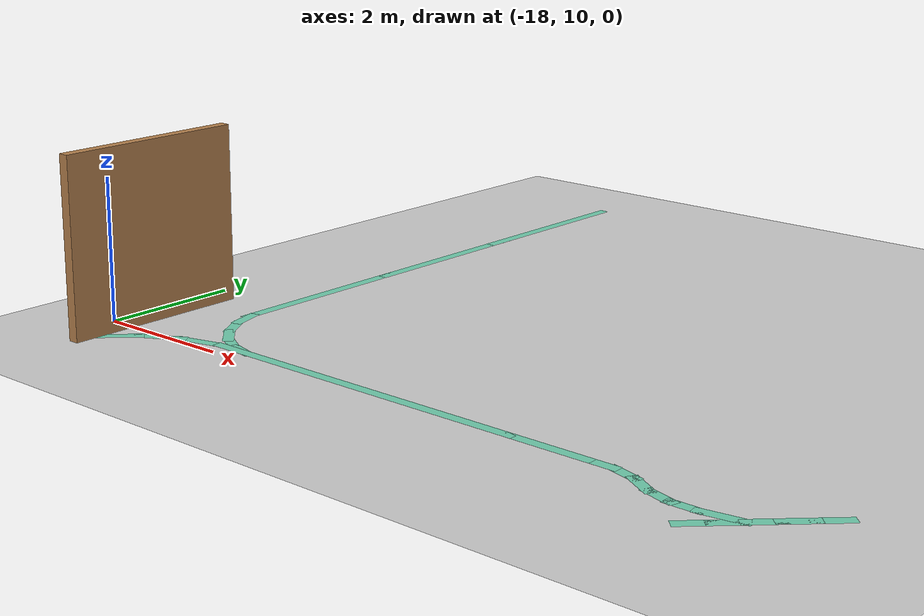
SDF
<sdf version="1.6">
 <world name="default">
  <model name="ground_plane">
   <static>1</static>
   <link name="link">
    <collision name="collision">
     <geometry><plane><normal>0 0 1</normal><size>100 100</size></plane></geometry>
     <surface><friction><ode><mu>100</mu><mu2>50</mu2></ode></friction></surface>
    </collision>
    <visual name="visual">
     <cast_shadows>0</cast_shadows>
     <geometry><plane><normal>0 0 1</normal><size>100 100</size></plane></geometry>
     <material>
      <script><uri>file://media/materials/scripts/gazebo.material</uri><name>Gazebo/Grey</name></script>
     </material>
    </visual>
   </link>
  </model>
  <model name="pomdp_path">
   <link name="Wall_100_clone_clone_clone_clone">
    <pose>7.57944 -0.900466 0 0 -0 -0.52358</pose>
    <visual name="Wall_100_Visual">
     <pose>0 0 0.0001 0 -0 0</pose>
     <geometry><box><size>0.5 0.15 0</size></box></geometry>
     <material>
      <script><uri>file://media/materials/scripts/gazebo.material</uri><name>Gazebo/Grey</name></script>
      <ambient>0.435294 0.796078 0.67451 1</ambient>
      <shader type="pixel"/>
     </material>
     <meta><layer>0</layer></meta>
    </visual>
    <collision name="Wall_100_Collision">
     <pose>0 0 0.0001 0 -0 0</pose>
     <geometry><box><size>0.5 0.15 0</size></box></geometry>
     <surface>
      <friction>
       <ode><mu>1</mu><mu2>1</mu2><fdir1>0 0 0</fdir1><slip1>0</slip1><slip2>0</slip2></ode>
       <torsional>
        <coefficient>1</coefficient>
        <patch_radius>0</patch_radius>
        <surface_radius>0</surface_radius>
        <use_patch_radius>1</use_patch_radius>
        <ode><slip>0</slip></ode>
       </torsional>
      </friction>
      <bounce><restitution_coefficient>0</restitution_coefficient><threshold>1e+06</threshold></bounce>
      <contact>
       <collide_without_contact>0</collide_without_contact>
       <collide_without_contact_bitmask>1</collide_without_contact_bitmask>
       <collide_bitmask>1</collide_bitmask>
       <ode>
        <soft_cfm>0</soft_cfm>
        <soft_erp>0.2</soft_erp>
        <kp>1e+13</kp>
        <kd>1</kd>
        <max_vel>0.01</max_vel>
        <min_depth>0</min_depth>
       </ode>
       <bullet>
        <split_impulse>1</split_impulse>
        <split_impulse_penetration_threshold>-0.01</split_impulse_penetration_threshold>
        <soft_cfm>0</soft_cfm>
        <soft_erp>0.2</soft_erp>
        <kp>1e+13</kp>
        <kd>1</kd>
       </bullet>
      </contact>
     </surface>
    </collision>
   </link>
   <link name="Wall_102_clone_clone">
    <pose>7.3019 -0.80535 0 0 -0 -0.26179</pose>
    <visual name="Wall_102_Visual">
     <pose>0 0 0.0001 0 -0 0</pose>
     <geometry><box><size>0.5 0.15 0</size></box></geometry>
     <material>
      <script><uri>file://media/materials/scripts/gazebo.material</uri><name>Gazebo/Grey</name></script>
      <ambient>0.435294 0.796078 0.67451 1</ambient>
      <shader type="pixel"/>
     </material>
     <meta><layer>0</layer></meta>
    </visual>
    <collision name="Wall_102_Collision">
     <pose>0 0 0.0001 0 -0 0</pose>
     <geometry><box><size>0.5 0.15 0</size></box></geometry>
     <surface>
      <friction>
       <ode><mu>1</mu><mu2>1</mu2><fdir1>0 0 0</fdir1><slip1>0</slip1><slip2>0</slip2></ode>
       <torsional>
        <coefficient>1</coefficient>
        <patch_radius>0</patch_radius>
        <surface_radius>0</surface_radius>
        <use_patch_radius>1</use_patch_radius>
        <ode><slip>0</slip></ode>
       </torsional>
      </friction>
      <bounce><restitution_coefficient>0</restitution_coefficient><threshold>1e+06</threshold></bounce>
      <contact>
       <collide_without_contact>0</collide_without_contact>
       <collide_without_contact_bitmask>1</collide_without_contact_bitmask>
       <collide_bitmask>1</collide_bitmask>
       <ode>
        <soft_cfm>0</soft_cfm>
        <soft_erp>0.2</soft_erp>
        <kp>1e+13</kp>
        <kd>1</kd>
        <max_vel>0.01</max_vel>
        <min_depth>0</min_depth>
       </ode>
       <bullet>
        <split_impulse>1</split_impulse>
        <split_impulse_penetration_threshold>-0.01</split_impulse_penetration_threshold>
        <soft_cfm>0</soft_cfm>
        <soft_erp>0.2</soft_erp>
        <kp>1e+13</kp>
        <kd>1</kd>
       </bullet>
      </contact>
     </surface>
    </collision>
   </link>
   <link name="Wall_138_clone_clone_clone_clone_clone">
    <pose>7.89054 -1.12595 0 0 -0 2.35622</pose>
    <visual name="Wall_138_Visual">
     <pose>0 0 0.0001 0 -0 0</pose>
     <geometry><box><size>0.5 0.15 0</size></box></geometry>
     <material>
      <script><uri>file://media/materials/scripts/gazebo.material</uri><name>Gazebo/Grey</name></script>
      <ambient>0.435294 0.796078 0.67451 1</ambient>
      <shader type="pixel"/>
     </material>
     <meta><layer>0</layer></meta>
    </visual>
    <collision name="Wall_138_Collision">
     <pose>0 0 0.0001 0 -0 0</pose>
     <geometry><box><size>0.5 0.15 0</size></box></geometry>
     <surface>
      <friction>
       <ode><mu>1</mu><mu2>1</mu2><fdir1>0 0 0</fdir1><slip1>0</slip1><slip2>0</slip2></ode>
       <torsional>
        <coefficient>1</coefficient>
        <patch_radius>0</patch_radius>
        <surface_radius>0</surface_radius>
        <use_patch_radius>1</use_patch_radius>
        <ode><slip>0</slip></ode>
       </torsional>
      </friction>
      <bounce><restitution_coefficient>0</restitution_coefficient><threshold>1e+06</threshold></bounce>
      <contact>
       <collide_without_contact>0</collide_without_contact>
       <collide_without_contact_bitmask>1</collide_without_contact_bitmask>
       <collide_bitmask>1</collide_bitmask>
       <ode>
        <soft_cfm>0</soft_cfm>
        <soft_erp>0.2</soft_erp>
        <kp>1e+13</kp>
        <kd>1</kd>
        <max_vel>0.01</max_vel>
        <min_depth>0</min_depth>
       </ode>
       <bullet>
        <split_impulse>1</split_impulse>
        <split_impulse_penetration_threshold>-0.01</split_impulse_penetration_threshold>
        <soft_cfm>0</soft_cfm>
        <soft_erp>0.2</soft_erp>
        <kp>1e+13</kp>
        <kd>1</kd>
       </bullet>
      </contact>
     </surface>
    </collision>
   </link>
   <link name="Wall_169_clone_clone">
    <pose>8.12917 -1.43142 0 0 -0 -1.04719</pose>
    <visual name="Wall_169_Visual">
     <pose>0 0 0.0001 0 -0 0</pose>
     <geometry><box><size>0.5 0.15 0</size></box></geometry>
     <material>
      <script><uri>file://media/materials/scripts/gazebo.material</uri><name>Gazebo/Grey</name></script>
      <ambient>0.435294 0.796078 0.67451 1</ambient>
      <shader type="pixel"/>
     </material>
     <meta><layer>0</layer></meta>
    </visual>
    <collision name="Wall_169_Collision">
     <pose>0 0 0.0001 0 -0 0</pose>
     <geometry><box><size>0.5 0.15 0</size></box></geometry>
     <surface>
      <friction>
       <ode><mu>1</mu><mu2>1</mu2><fdir1>0 0 0</fdir1><slip1>0</slip1><slip2>0</slip2></ode>
       <torsional>
        <coefficient>1</coefficient>
        <patch_radius>0</patch_radius>
        <surface_radius>0</surface_radius>
        <use_patch_radius>1</use_patch_radius>
        <ode><slip>0</slip></ode>
       </torsional>
      </friction>
      <bounce><restitution_coefficient>0</restitution_coefficient><threshold>1e+06</threshold></bounce>
      <contact>
       <collide_without_contact>0</collide_without_contact>
       <collide_without_contact_bitmask>1</collide_without_contact_bitmask>
       <collide_bitmask>1</collide_bitmask>
       <ode>
        <soft_cfm>0</soft_cfm>
        <soft_erp>0.2</soft_erp>
        <kp>1e+13</kp>
        <kd>1</kd>
        <max_vel>0.01</max_vel>
        <min_depth>0</min_depth>
       </ode>
       <bullet>
        <split_impulse>1</split_impulse>
        <split_impulse_penetration_threshold>-0.01</split_impulse_penetration_threshold>
        <soft_cfm>0</soft_cfm>
        <soft_erp>0.2</soft_erp>
        <kp>1e+13</kp>
        <kd>1</kd>
       </bullet>
      </contact>
     </surface>
    </collision>
   </link>
   <link name="Wall_170_clone_clone_clone_clone_clone">
    <pose>8.27616 -1.77425 0 0 -0 1.83262</pose>
    <visual name="Wall_170_Visual">
     <pose>0 0 0.0001 0 -0 0</pose>
     <geometry><box><size>0.5 0.15 0</size></box></geometry>
     <material>
      <script><uri>file://media/materials/scripts/gazebo.material</uri><name>Gazebo/Grey</name></script>
      <ambient>0.435294 0.796078 0.67451 1</ambient>
      <shader type="pixel"/>
     </material>
     <meta><layer>0</layer></meta>
    </visual>
    <collision name="Wall_170_Collision">
     <pose>0 0 0.0001 0 -0 0</pose>
     <geometry><box><size>0.5 0.15 0</size></box></geometry>
     <surface>
      <friction>
       <ode><mu>1</mu><mu2>1</mu2><fdir1>0 0 0</fdir1><slip1>0</slip1><slip2>0</slip2></ode>
       <torsional>
        <coefficient>1</coefficient>
        <patch_radius>0</patch_radius>
        <surface_radius>0</surface_radius>
        <use_patch_radius>1</use_patch_radius>
        <ode><slip>0</slip></ode>
       </torsional>
      </friction>
      <bounce><restitution_coefficient>0</restitution_coefficient><threshold>1e+06</threshold></bounce>
      <contact>
       <collide_without_contact>0</collide_without_contact>
       <collide_without_contact_bitmask>1</collide_without_contact_bitmask>
       <collide_bitmask>1</collide_bitmask>
       <ode>
        <soft_cfm>0</soft_cfm>
        <soft_erp>0.2</soft_erp>
        <kp>1e+13</kp>
        <kd>1</kd>
        <max_vel>0.01</max_vel>
        <min_depth>0</min_depth>
       </ode>
       <bullet>
        <split_impulse>1</split_impulse>
        <split_impulse_penetration_threshold>-0.01</split_impulse_penetration_threshold>
        <soft_cfm>0</soft_cfm>
        <soft_erp>0.2</soft_erp>
        <kp>1e+13</kp>
        <kd>1</kd>
       </bullet>
      </contact>
     </surface>
    </collision>
   </link>
   <link name="Wall_200">
    <pose>-1.09302 -1.11686 0 0 -0 0.785398</pose>
    <visual name="Wall_200_Visual">
     <pose>0 0 0.0001 0 -0 0</pose>
     <geometry><box><size>0.5 0.15 0</size></box></geometry>
     <material>
      <script><uri>file://media/materials/scripts/gazebo.material</uri><name>Gazebo/Grey</name></script>
      <ambient>0.435294 0.796078 0.67451 1</ambient>
      <shader type="pixel"/>
     </material>
     <meta><layer>0</layer></meta>
    </visual>
    <collision name="Wall_200_Collision">
     <pose>0 0 0.0001 0 -0 0</pose>
     <geometry><box><size>0.5 0.15 0</size></box></geometry>
     <surface>
      <friction>
       <ode><mu>1</mu><mu2>1</mu2><fdir1>0 0 0</fdir1><slip1>0</slip1><slip2>0</slip2></ode>
       <torsional>
        <coefficient>1</coefficient>
        <patch_radius>0</patch_radius>
        <surface_radius>0</surface_radius>
        <use_patch_radius>1</use_patch_radius>
        <ode><slip>0</slip></ode>
       </torsional>
      </friction>
      <bounce><restitution_coefficient>0</restitution_coefficient><threshold>1e+06</threshold></bounce>
      <contact>
       <collide_without_contact>0</collide_without_contact>
       <collide_without_contact_bitmask>1</collide_without_contact_bitmask>
       <collide_bitmask>1</collide_bitmask>
       <ode>
        <soft_cfm>0</soft_cfm>
        <soft_erp>0.2</soft_erp>
        <kp>1e+13</kp>
        <kd>1</kd>
        <max_vel>0.01</max_vel>
        <min_depth>0</min_depth>
       </ode>
       <bullet>
        <split_impulse>1</split_impulse>
        <split_impulse_penetration_threshold>-0.01</split_impulse_penetration_threshold>
        <soft_cfm>0</soft_cfm>
        <soft_erp>0.2</soft_erp>
        <kp>1e+13</kp>
        <kd>1</kd>
       </bullet>
      </contact>
     </surface>
    </collision>
   </link>
   <link name="Wall_230">
    <pose>0.209547 -0.413565 0 0 -0 0</pose>
    <visual name="Wall_230_Visual">
     <pose>0 0 0.0001 0 -0 0</pose>
     <geometry><box><size>0.5 0.15 0</size></box></geometry>
     <material>
      <script><uri>file://media/materials/scripts/gazebo.material</uri><name>Gazebo/Grey</name></script>
      <ambient>0.435294 0.796078 0.67451 1</ambient>
      <shader type="pixel"/>
     </material>
     <meta><layer>0</layer></meta>
    </visual>
    <collision name="Wall_230_Collision">
     <pose>0 0 0.0001 0 -0 0</pose>
     <geometry><box><size>0.5 0.15 0</size></box></geometry>
     <surface>
      <friction>
       <ode><mu>1</mu><mu2>1</mu2><fdir1>0 0 0</fdir1><slip1>0</slip1><slip2>0</slip2></ode>
       <torsional>
        <coefficient>1</coefficient>
        <patch_radius>0</patch_radius>
        <surface_radius>0</surface_radius>
        <use_patch_radius>1</use_patch_radius>
        <ode><slip>0</slip></ode>
       </torsional>
      </friction>
      <bounce><restitution_coefficient>0</restitution_coefficient><threshold>1e+06</threshold></bounce>
      <contact>
       <collide_without_contact>0</collide_without_contact>
       <collide_without_contact_bitmask>1</collide_without_contact_bitmask>
       <collide_bitmask>1</collide_bitmask>
       <ode>
        <soft_cfm>0</soft_cfm>
        <soft_erp>0.2</soft_erp>
        <kp>1e+13</kp>
        <kd>1</kd>
        <max_vel>0.01</max_vel>
        <min_depth>0</min_depth>
       </ode>
       <bullet>
        <split_impulse>1</split_impulse>
        <split_impulse_penetration_threshold>-0.01</split_impulse_penetration_threshold>
        <soft_cfm>0</soft_cfm>
        <soft_erp>0.2</soft_erp>
        <kp>1e+13</kp>
        <kd>1</kd>
       </bullet>
      </contact>
     </surface>
    </collision>
   </link>
   <link name="Wall_231">
    <pose>0.553584 -0.458858 0 0 0 -0.261799</pose>
    <visual name="Wall_231_Visual">
     <pose>0 0 0.0001 0 -0 0</pose>
     <geometry><box><size>0.5 0.15 0</size></box></geometry>
     <material>
      <script><uri>file://media/materials/scripts/gazebo.material</uri><name>Gazebo/Grey</name></script>
      <ambient>0.435294 0.796078 0.67451 1</ambient>
      <shader type="pixel"/>
     </material>
     <meta><layer>0</layer></meta>
    </visual>
    <collision name="Wall_231_Collision">
     <pose>0 0 0.0001 0 -0 0</pose>
     <geometry><box><size>0.5 0.15 0</size></box></geometry>
     <surface>
      <friction>
       <ode><mu>1</mu><mu2>1</mu2><fdir1>0 0 0</fdir1><slip1>0</slip1><slip2>0</slip2></ode>
       <torsional>
        <coefficient>1</coefficient>
        <patch_radius>0</patch_radius>
        <surface_radius>0</surface_radius>
        <use_patch_radius>1</use_patch_radius>
        <ode><slip>0</slip></ode>
       </torsional>
      </friction>
      <bounce><restitution_coefficient>0</restitution_coefficient><threshold>1e+06</threshold></bounce>
      <contact>
       <collide_without_contact>0</collide_without_contact>
       <collide_without_contact_bitmask>1</collide_without_contact_bitmask>
       <collide_bitmask>1</collide_bitmask>
       <ode>
        <soft_cfm>0</soft_cfm>
        <soft_erp>0.2</soft_erp>
        <kp>1e+13</kp>
        <kd>1</kd>
        <max_vel>0.01</max_vel>
        <min_depth>0</min_depth>
       </ode>
       <bullet>
        <split_impulse>1</split_impulse>
        <split_impulse_penetration_threshold>-0.01</split_impulse_penetration_threshold>
        <soft_cfm>0</soft_cfm>
        <soft_erp>0.2</soft_erp>
        <kp>1e+13</kp>
        <kd>1</kd>
       </bullet>
      </contact>
     </surface>
    </collision>
   </link>
   <link name="Wall_232">
    <pose>0.874176 -0.591651 0 0 0 -0.523599</pose>
    <visual name="Wall_232_Visual">
     <pose>0 0 0.0001 0 -0 0</pose>
     <geometry><box><size>0.5 0.15 0</size></box></geometry>
     <material>
      <script><uri>file://media/materials/scripts/gazebo.material</uri><name>Gazebo/Grey</name></script>
      <ambient>0.435294 0.796078 0.67451 1</ambient>
      <shader type="pixel"/>
     </material>
     <meta><layer>0</layer></meta>
    </visual>
    <collision name="Wall_232_Collision">
     <pose>0 0 0.0001 0 -0 0</pose>
     <geometry><box><size>0.5 0.15 0</size></box></geometry>
     <surface>
      <friction>
       <ode><mu>1</mu><mu2>1</mu2><fdir1>0 0 0</fdir1><slip1>0</slip1><slip2>0</slip2></ode>
       <torsional>
        <coefficient>1</coefficient>
        <patch_radius>0</patch_radius>
        <surface_radius>0</surface_radius>
        <use_patch_radius>1</use_patch_radius>
        <ode><slip>0</slip></ode>
       </torsional>
      </friction>
      <bounce><restitution_coefficient>0</restitution_coefficient><threshold>1e+06</threshold></bounce>
      <contact>
       <collide_without_contact>0</collide_without_contact>
       <collide_without_contact_bitmask>1</collide_without_contact_bitmask>
       <collide_bitmask>1</collide_bitmask>
       <ode>
        <soft_cfm>0</soft_cfm>
        <soft_erp>0.2</soft_erp>
        <kp>1e+13</kp>
        <kd>1</kd>
        <max_vel>0.01</max_vel>
        <min_depth>0</min_depth>
       </ode>
       <bullet>
        <split_impulse>1</split_impulse>
        <split_impulse_penetration_threshold>-0.01</split_impulse_penetration_threshold>
        <soft_cfm>0</soft_cfm>
        <soft_erp>0.2</soft_erp>
        <kp>1e+13</kp>
        <kd>1</kd>
       </bullet>
      </contact>
     </surface>
    </collision>
   </link>
   <link name="Wall_235">
    <pose>1.19477 -0.724445 0 0 0 -0.261799</pose>
    <visual name="Wall_235_Visual">
     <pose>0 0 0.0001 0 -0 0</pose>
     <geometry><box><size>0.5 0.15 0</size></box></geometry>
     <material>
      <script><uri>file://media/materials/scripts/gazebo.material</uri><name>Gazebo/Grey</name></script>
      <ambient>0.435294 0.796078 0.67451 1</ambient>
      <shader type="pixel"/>
     </material>
     <meta><layer>0</layer></meta>
    </visual>
    <collision name="Wall_235_Collision">
     <pose>0 0 0.0001 0 -0 0</pose>
     <geometry><box><size>0.5 0.15 0</size></box></geometry>
     <surface>
      <friction>
       <ode><mu>1</mu><mu2>1</mu2><fdir1>0 0 0</fdir1><slip1>0</slip1><slip2>0</slip2></ode>
       <torsional>
        <coefficient>1</coefficient>
        <patch_radius>0</patch_radius>
        <surface_radius>0</surface_radius>
        <use_patch_radius>1</use_patch_radius>
        <ode><slip>0</slip></ode>
       </torsional>
      </friction>
      <bounce><restitution_coefficient>0</restitution_coefficient><threshold>1e+06</threshold></bounce>
      <contact>
       <collide_without_contact>0</collide_without_contact>
       <collide_without_contact_bitmask>1</collide_without_contact_bitmask>
       <collide_bitmask>1</collide_bitmask>
       <ode>
        <soft_cfm>0</soft_cfm>
        <soft_erp>0.2</soft_erp>
        <kp>1e+13</kp>
        <kd>1</kd>
        <max_vel>0.01</max_vel>
        <min_depth>0</min_depth>
       </ode>
       <bullet>
        <split_impulse>1</split_impulse>
        <split_impulse_penetration_threshold>-0.01</split_impulse_penetration_threshold>
        <soft_cfm>0</soft_cfm>
        <soft_erp>0.2</soft_erp>
        <kp>1e+13</kp>
        <kd>1</kd>
       </bullet>
      </contact>
     </surface>
    </collision>
   </link>
   <link name="Wall_236">
    <pose>1.5388 -0.769738 0 0 -0 0</pose>
    <visual name="Wall_236_Visual">
     <pose>0 0 0.0001 0 -0 0</pose>
     <geometry><box><size>0.5 0.15 0</size></box></geometry>
     <material>
      <script><uri>file://media/materials/scripts/gazebo.material</uri><name>Gazebo/Grey</name></script>
      <ambient>0.435294 0.796078 0.67451 1</ambient>
      <shader type="pixel"/>
     </material>
     <meta><layer>0</layer></meta>
    </visual>
    <collision name="Wall_236_Collision">
     <pose>0 0 0.0001 0 -0 0</pose>
     <geometry><box><size>0.5 0.15 0</size></box></geometry>
     <surface>
      <friction>
       <ode><mu>1</mu><mu2>1</mu2><fdir1>0 0 0</fdir1><slip1>0</slip1><slip2>0</slip2></ode>
       <torsional>
        <coefficient>1</coefficient>
        <patch_radius>0</patch_radius>
        <surface_radius>0</surface_radius>
        <use_patch_radius>1</use_patch_radius>
        <ode><slip>0</slip></ode>
       </torsional>
      </friction>
      <bounce><restitution_coefficient>0</restitution_coefficient><threshold>1e+06</threshold></bounce>
      <contact>
       <collide_without_contact>0</collide_without_contact>
       <collide_without_contact_bitmask>1</collide_without_contact_bitmask>
       <collide_bitmask>1</collide_bitmask>
       <ode>
        <soft_cfm>0</soft_cfm>
        <soft_erp>0.2</soft_erp>
        <kp>1e+13</kp>
        <kd>1</kd>
        <max_vel>0.01</max_vel>
        <min_depth>0</min_depth>
       </ode>
       <bullet>
        <split_impulse>1</split_impulse>
        <split_impulse_penetration_threshold>-0.01</split_impulse_penetration_threshold>
        <soft_cfm>0</soft_cfm>
        <soft_erp>0.2</soft_erp>
        <kp>1e+13</kp>
        <kd>1</kd>
       </bullet>
      </contact>
     </surface>
    </collision>
   </link>
   <link name="Wall_237">
    <pose>2.2638 -0.769739 0 0 -0 0</pose>
    <visual name="Wall_237_Visual">
     <pose>0 0 0.0001 0 -0 0</pose>
     <geometry><box><size>1.25 0.15 0</size></box></geometry>
     <material>
      <script><uri>file://media/materials/scripts/gazebo.material</uri><name>Gazebo/Grey</name></script>
      <ambient>0.435294 0.796078 0.67451 1</ambient>
      <shader type="pixel"/>
     </material>
     <meta><layer>0</layer></meta>
    </visual>
    <collision name="Wall_237_Collision">
     <pose>0 0 0.0001 0 -0 0</pose>
     <geometry><box><size>1.25 0.15 0</size></box></geometry>
     <surface>
      <friction>
       <ode><mu>1</mu><mu2>1</mu2><fdir1>0 0 0</fdir1><slip1>0</slip1><slip2>0</slip2></ode>
       <torsional>
        <coefficient>1</coefficient>
        <patch_radius>0</patch_radius>
        <surface_radius>0</surface_radius>
        <use_patch_radius>1</use_patch_radius>
        <ode><slip>0</slip></ode>
       </torsional>
      </friction>
      <bounce><restitution_coefficient>0</restitution_coefficient><threshold>1e+06</threshold></bounce>
      <contact>
       <collide_without_contact>0</collide_without_contact>
       <collide_without_contact_bitmask>1</collide_without_contact_bitmask>
       <collide_bitmask>1</collide_bitmask>
       <ode>
        <soft_cfm>0</soft_cfm>
        <soft_erp>0.2</soft_erp>
        <kp>1e+13</kp>
        <kd>1</kd>
        <max_vel>0.01</max_vel>
        <min_depth>0</min_depth>
       </ode>
       <bullet>
        <split_impulse>1</split_impulse>
        <split_impulse_penetration_threshold>-0.01</split_impulse_penetration_threshold>
        <soft_cfm>0</soft_cfm>
        <soft_erp>0.2</soft_erp>
        <kp>1e+13</kp>
        <kd>1</kd>
       </bullet>
      </contact>
     </surface>
    </collision>
   </link>
   <link name="Wall_238">
    <pose>5.2388 -0.769738 0 0 -0 0</pose>
    <visual name="Wall_238_Visual">
     <pose>0 0 0.0001 0 -0 0</pose>
     <geometry><box><size>5 0.15 0</size></box></geometry>
     <material>
      <script><uri>file://media/materials/scripts/gazebo.material</uri><name>Gazebo/Grey</name></script>
      <ambient>0.435294 0.796078 0.67451 1</ambient>
      <shader type="pixel"/>
     </material>
     <meta><layer>0</layer></meta>
    </visual>
    <collision name="Wall_238_Collision">
     <pose>0 0 0.0001 0 -0 0</pose>
     <geometry><box><size>5 0.15 0</size></box></geometry>
     <surface>
      <friction>
       <ode><mu>1</mu><mu2>1</mu2><fdir1>0 0 0</fdir1><slip1>0</slip1><slip2>0</slip2></ode>
       <torsional>
        <coefficient>1</coefficient>
        <patch_radius>0</patch_radius>
        <surface_radius>0</surface_radius>
        <use_patch_radius>1</use_patch_radius>
        <ode><slip>0</slip></ode>
       </torsional>
      </friction>
      <bounce><restitution_coefficient>0</restitution_coefficient><threshold>1e+06</threshold></bounce>
      <contact>
       <collide_without_contact>0</collide_without_contact>
       <collide_without_contact_bitmask>1</collide_without_contact_bitmask>
       <collide_bitmask>1</collide_bitmask>
       <ode>
        <soft_cfm>0</soft_cfm>
        <soft_erp>0.2</soft_erp>
        <kp>1e+13</kp>
        <kd>1</kd>
        <max_vel>0.01</max_vel>
        <min_depth>0</min_depth>
       </ode>
       <bullet>
        <split_impulse>1</split_impulse>
        <split_impulse_penetration_threshold>-0.01</split_impulse_penetration_threshold>
        <soft_cfm>0</soft_cfm>
        <soft_erp>0.2</soft_erp>
        <kp>1e+13</kp>
        <kd>1</kd>
       </bullet>
      </contact>
     </surface>
    </collision>
   </link>
   <link name="Wall_240">
    <pose>7.95358 -0.692092 0 0 -0 0.261799</pose>
    <visual name="Wall_240_Visual">
     <pose>0 0 0.0001 0 -0 0</pose>
     <geometry><box><size>0.75 0.15 0</size></box></geometry>
     <material>
      <script><uri>file://media/materials/scripts/gazebo.material</uri><name>Gazebo/Grey</name></script>
      <ambient>0.435294 0.796078 0.67451 1</ambient>
      <shader type="pixel"/>
     </material>
     <meta><layer>0</layer></meta>
    </visual>
    <collision name="Wall_240_Collision">
     <pose>0 0 0.0001 0 -0 0</pose>
     <geometry><box><size>0.75 0.15 0</size></box></geometry>
     <surface>
      <friction>
       <ode><mu>1</mu><mu2>1</mu2><fdir1>0 0 0</fdir1><slip1>0</slip1><slip2>0</slip2></ode>
       <torsional>
        <coefficient>1</coefficient>
        <patch_radius>0</patch_radius>
        <surface_radius>0</surface_radius>
        <use_patch_radius>1</use_patch_radius>
        <ode><slip>0</slip></ode>
       </torsional>
      </friction>
      <bounce><restitution_coefficient>0</restitution_coefficient><threshold>1e+06</threshold></bounce>
      <contact>
       <collide_without_contact>0</collide_without_contact>
       <collide_without_contact_bitmask>1</collide_without_contact_bitmask>
       <collide_bitmask>1</collide_bitmask>
       <ode>
        <soft_cfm>0</soft_cfm>
        <soft_erp>0.2</soft_erp>
        <kp>1e+13</kp>
        <kd>1</kd>
        <max_vel>0.01</max_vel>
        <min_depth>0</min_depth>
       </ode>
       <bullet>
        <split_impulse>1</split_impulse>
        <split_impulse_penetration_threshold>-0.01</split_impulse_penetration_threshold>
        <soft_cfm>0</soft_cfm>
        <soft_erp>0.2</soft_erp>
        <kp>1e+13</kp>
        <kd>1</kd>
       </bullet>
      </contact>
     </surface>
    </collision>
   </link>
   <link name="Wall_241">
    <pose>8.50317 -0.464447 0 0 -0 0.523599</pose>
    <visual name="Wall_241_Visual">
     <pose>0 0 0.0001 0 -0 0</pose>
     <geometry><box><size>0.75 0.15 0</size></box></geometry>
     <material>
      <script><uri>file://media/materials/scripts/gazebo.material</uri><name>Gazebo/Grey</name></script>
      <ambient>0.435294 0.796078 0.67451 1</ambient>
      <shader type="pixel"/>
     </material>
     <meta><layer>0</layer></meta>
    </visual>
    <collision name="Wall_241_Collision">
     <pose>0 0 0.0001 0 -0 0</pose>
     <geometry><box><size>0.75 0.15 0</size></box></geometry>
     <surface>
      <friction>
       <ode><mu>1</mu><mu2>1</mu2><fdir1>0 0 0</fdir1><slip1>0</slip1><slip2>0</slip2></ode>
       <torsional>
        <coefficient>1</coefficient>
        <patch_radius>0</patch_radius>
        <surface_radius>0</surface_radius>
        <use_patch_radius>1</use_patch_radius>
        <ode><slip>0</slip></ode>
       </torsional>
      </friction>
      <bounce><restitution_coefficient>0</restitution_coefficient><threshold>1e+06</threshold></bounce>
      <contact>
       <collide_without_contact>0</collide_without_contact>
       <collide_without_contact_bitmask>1</collide_without_contact_bitmask>
       <collide_bitmask>1</collide_bitmask>
       <ode>
        <soft_cfm>0</soft_cfm>
        <soft_erp>0.2</soft_erp>
        <kp>1e+13</kp>
        <kd>1</kd>
        <max_vel>0.01</max_vel>
        <min_depth>0</min_depth>
       </ode>
       <bullet>
        <split_impulse>1</split_impulse>
        <split_impulse_penetration_threshold>-0.01</split_impulse_penetration_threshold>
        <soft_cfm>0</soft_cfm>
        <soft_erp>0.2</soft_erp>
        <kp>1e+13</kp>
        <kd>1</kd>
       </bullet>
      </contact>
     </surface>
    </collision>
   </link>
   <link name="Wall_242">
    <pose>8.97511 -0.102315 0 0 -0 0.785398</pose>
    <visual name="Wall_242_Visual">
     <pose>0 0 0.0001 0 -0 0</pose>
     <geometry><box><size>0.75 0.15 0</size></box></geometry>
     <material>
      <script><uri>file://media/materials/scripts/gazebo.material</uri><name>Gazebo/Grey</name></script>
      <ambient>0.435294 0.796078 0.67451 1</ambient>
      <shader type="pixel"/>
     </material>
     <meta><layer>0</layer></meta>
    </visual>
    <collision name="Wall_242_Collision">
     <pose>0 0 0.0001 0 -0 0</pose>
     <geometry><box><size>0.75 0.15 0</size></box></geometry>
     <surface>
      <friction>
       <ode><mu>1</mu><mu2>1</mu2><fdir1>0 0 0</fdir1><slip1>0</slip1><slip2>0</slip2></ode>
       <torsional>
        <coefficient>1</coefficient>
        <patch_radius>0</patch_radius>
        <surface_radius>0</surface_radius>
        <use_patch_radius>1</use_patch_radius>
        <ode><slip>0</slip></ode>
       </torsional>
      </friction>
      <bounce><restitution_coefficient>0</restitution_coefficient><threshold>1e+06</threshold></bounce>
      <contact>
       <collide_without_contact>0</collide_without_contact>
       <collide_without_contact_bitmask>1</collide_without_contact_bitmask>
       <collide_bitmask>1</collide_bitmask>
       <ode>
        <soft_cfm>0</soft_cfm>
        <soft_erp>0.2</soft_erp>
        <kp>1e+13</kp>
        <kd>1</kd>
        <max_vel>0.01</max_vel>
        <min_depth>0</min_depth>
       </ode>
       <bullet>
        <split_impulse>1</split_impulse>
        <split_impulse_penetration_threshold>-0.01</split_impulse_penetration_threshold>
        <soft_cfm>0</soft_cfm>
        <soft_erp>0.2</soft_erp>
        <kp>1e+13</kp>
        <kd>1</kd>
       </bullet>
      </contact>
     </surface>
    </collision>
   </link>
   <link name="Wall_249_clone_clone_clone">
    <pose>8.32617 -6.04284 0 0 -0 -1.57078</pose>
    <visual name="Wall_249_Visual">
     <pose>0 0 0.0001 0 -0 0</pose>
     <geometry><box><size>3 0.15 0</size></box></geometry>
     <material>
      <script><uri>file://media/materials/scripts/gazebo.material</uri><name>Gazebo/Grey</name></script>
      <ambient>0.435294 0.796078 0.67451 1</ambient>
      <shader type="pixel"/>
     </material>
     <meta><layer>0</layer></meta>
    </visual>
    <collision name="Wall_249_Collision">
     <pose>0 0 0.0001 0 -0 0</pose>
     <geometry><box><size>3 0.15 0</size></box></geometry>
     <surface>
      <friction>
       <ode><mu>1</mu><mu2>1</mu2><fdir1>0 0 0</fdir1><slip1>0</slip1><slip2>0</slip2></ode>
       <torsional>
        <coefficient>1</coefficient>
        <patch_radius>0</patch_radius>
        <surface_radius>0</surface_radius>
        <use_patch_radius>1</use_patch_radius>
        <ode><slip>0</slip></ode>
       </torsional>
      </friction>
      <bounce><restitution_coefficient>0</restitution_coefficient><threshold>1e+06</threshold></bounce>
      <contact>
       <collide_without_contact>0</collide_without_contact>
       <collide_without_contact_bitmask>1</collide_without_contact_bitmask>
       <collide_bitmask>1</collide_bitmask>
       <ode>
        <soft_cfm>0</soft_cfm>
        <soft_erp>0.2</soft_erp>
        <kp>1e+13</kp>
        <kd>1</kd>
        <max_vel>0.01</max_vel>
        <min_depth>0</min_depth>
       </ode>
       <bullet>
        <split_impulse>1</split_impulse>
        <split_impulse_penetration_threshold>-0.01</split_impulse_penetration_threshold>
        <soft_cfm>0</soft_cfm>
        <soft_erp>0.2</soft_erp>
        <kp>1e+13</kp>
        <kd>1</kd>
       </bullet>
      </contact>
     </surface>
    </collision>
   </link>
   <link name="Wall_249_clone_clone_clone_0">
    <pose>8.32805 -8.52775 0 0 -0 -1.57078</pose>
    <visual name="Wall_249_Visual">
     <pose>0 0 0.0001 0 -0 0</pose>
     <geometry><box><size>3 0.15 0</size></box></geometry>
     <material>
      <script><uri>file://media/materials/scripts/gazebo.material</uri><name>Gazebo/Grey</name></script>
      <ambient>0.435294 0.796078 0.67451 1</ambient>
      <shader type="pixel"/>
     </material>
     <meta><layer>0</layer></meta>
    </visual>
    <collision name="Wall_249_Collision">
     <pose>0 0 0.0001 0 -0 0</pose>
     <geometry><box><size>3 0.15 0</size></box></geometry>
     <surface>
      <friction>
       <ode><mu>1</mu><mu2>1</mu2><fdir1>0 0 0</fdir1><slip1>0</slip1><slip2>0</slip2></ode>
       <torsional>
        <coefficient>1</coefficient>
        <patch_radius>0</patch_radius>
        <surface_radius>0</surface_radius>
        <use_patch_radius>1</use_patch_radius>
        <ode><slip>0</slip></ode>
       </torsional>
      </friction>
      <bounce><restitution_coefficient>0</restitution_coefficient><threshold>1e+06</threshold></bounce>
      <contact>
       <collide_without_contact>0</collide_without_contact>
       <collide_without_contact_bitmask>1</collide_without_contact_bitmask>
       <collide_bitmask>1</collide_bitmask>
       <ode>
        <soft_cfm>0</soft_cfm>
        <soft_erp>0.2</soft_erp>
        <kp>1e+13</kp>
        <kd>1</kd>
        <max_vel>0.01</max_vel>
        <min_depth>0</min_depth>
       </ode>
       <bullet>
        <split_impulse>1</split_impulse>
        <split_impulse_penetration_threshold>-0.01</split_impulse_penetration_threshold>
        <soft_cfm>0</soft_cfm>
        <soft_erp>0.2</soft_erp>
        <kp>1e+13</kp>
        <kd>1</kd>
       </bullet>
      </contact>
     </surface>
    </collision>
   </link>
   <link name="Wall_249_clone_clone_clone_1">
    <pose>8.32842 -3.30337 0 0 -0 -1.57078</pose>
    <visual name="Wall_249_Visual">
     <pose>0 0 0.0001 0 -0 0</pose>
     <geometry><box><size>3 0.15 0</size></box></geometry>
     <material>
      <script><uri>file://media/materials/scripts/gazebo.material</uri><name>Gazebo/Grey</name></script>
      <ambient>0.435294 0.796078 0.67451 1</ambient>
      <shader type="pixel"/>
     </material>
     <meta><layer>0</layer></meta>
    </visual>
    <collision name="Wall_249_Collision">
     <pose>0 0 0.0001 0 -0 0</pose>
     <geometry><box><size>3 0.15 0</size></box></geometry>
     <surface>
      <friction>
       <ode><mu>1</mu><mu2>1</mu2><fdir1>0 0 0</fdir1><slip1>0</slip1><slip2>0</slip2></ode>
       <torsional>
        <coefficient>1</coefficient>
        <patch_radius>0</patch_radius>
        <surface_radius>0</surface_radius>
        <use_patch_radius>1</use_patch_radius>
        <ode><slip>0</slip></ode>
       </torsional>
      </friction>
      <bounce><restitution_coefficient>0</restitution_coefficient><threshold>1e+06</threshold></bounce>
      <contact>
       <collide_without_contact>0</collide_without_contact>
       <collide_without_contact_bitmask>1</collide_without_contact_bitmask>
       <collide_bitmask>1</collide_bitmask>
       <ode>
        <soft_cfm>0</soft_cfm>
        <soft_erp>0.2</soft_erp>
        <kp>1e+13</kp>
        <kd>1</kd>
        <max_vel>0.01</max_vel>
        <min_depth>0</min_depth>
       </ode>
       <bullet>
        <split_impulse>1</split_impulse>
        <split_impulse_penetration_threshold>-0.01</split_impulse_penetration_threshold>
        <soft_cfm>0</soft_cfm>
        <soft_erp>0.2</soft_erp>
        <kp>1e+13</kp>
        <kd>1</kd>
       </bullet>
      </contact>
     </surface>
    </collision>
   </link>
   <link name="Wall_254">
    <pose>-0.845528 -0.869377 0 0 -0 0.785398</pose>
    <visual name="Wall_254_Visual">
     <pose>0 0 0.0001 0 -0 0</pose>
     <geometry><box><size>0.5 0.15 0</size></box></geometry>
     <material>
      <script><uri>file://media/materials/scripts/gazebo.material</uri><name>Gazebo/Grey</name></script>
      <ambient>0.435294 0.796078 0.67451 1</ambient>
      <shader type="pixel"/>
     </material>
     <meta><layer>0</layer></meta>
    </visual>
    <collision name="Wall_254_Collision">
     <pose>0 0 0.0001 0 -0 0</pose>
     <geometry><box><size>0.5 0.15 0</size></box></geometry>
     <surface>
      <friction>
       <ode><mu>1</mu><mu2>1</mu2><fdir1>0 0 0</fdir1><slip1>0</slip1><slip2>0</slip2></ode>
       <torsional>
        <coefficient>1</coefficient>
        <patch_radius>0</patch_radius>
        <surface_radius>0</surface_radius>
        <use_patch_radius>1</use_patch_radius>
        <ode><slip>0</slip></ode>
       </torsional>
      </friction>
      <bounce><restitution_coefficient>0</restitution_coefficient><threshold>1e+06</threshold></bounce>
      <contact>
       <collide_without_contact>0</collide_without_contact>
       <collide_without_contact_bitmask>1</collide_without_contact_bitmask>
       <collide_bitmask>1</collide_bitmask>
       <ode>
        <soft_cfm>0</soft_cfm>
        <soft_erp>0.2</soft_erp>
        <kp>1e+13</kp>
        <kd>1</kd>
        <max_vel>0.01</max_vel>
        <min_depth>0</min_depth>
       </ode>
       <bullet>
        <split_impulse>1</split_impulse>
        <split_impulse_penetration_threshold>-0.01</split_impulse_penetration_threshold>
        <soft_cfm>0</soft_cfm>
        <soft_erp>0.2</soft_erp>
        <kp>1e+13</kp>
        <kd>1</kd>
       </bullet>
      </contact>
     </surface>
    </collision>
   </link>
   <link name="Wall_255">
    <pose>-0.598041 -0.621889 0 0 -0 0.785398</pose>
    <visual name="Wall_255_Visual">
     <pose>0 0 0.0001 0 -0 0</pose>
     <geometry><box><size>0.5 0.15 0</size></box></geometry>
     <material>
      <script><uri>file://media/materials/scripts/gazebo.material</uri><name>Gazebo/Grey</name></script>
      <ambient>0.435294 0.796078 0.67451 1</ambient>
      <shader type="pixel"/>
     </material>
     <meta><layer>0</layer></meta>
    </visual>
    <collision name="Wall_255_Collision">
     <pose>0 0 0.0001 0 -0 0</pose>
     <geometry><box><size>0.5 0.15 0</size></box></geometry>
     <surface>
      <friction>
       <ode><mu>1</mu><mu2>1</mu2><fdir1>0 0 0</fdir1><slip1>0</slip1><slip2>0</slip2></ode>
       <torsional>
        <coefficient>1</coefficient>
        <patch_radius>0</patch_radius>
        <surface_radius>0</surface_radius>
        <use_patch_radius>1</use_patch_radius>
        <ode><slip>0</slip></ode>
       </torsional>
      </friction>
      <bounce><restitution_coefficient>0</restitution_coefficient><threshold>1e+06</threshold></bounce>
      <contact>
       <collide_without_contact>0</collide_without_contact>
       <collide_without_contact_bitmask>1</collide_without_contact_bitmask>
       <collide_bitmask>1</collide_bitmask>
       <ode>
        <soft_cfm>0</soft_cfm>
        <soft_erp>0.2</soft_erp>
        <kp>1e+13</kp>
        <kd>1</kd>
        <max_vel>0.01</max_vel>
        <min_depth>0</min_depth>
       </ode>
       <bullet>
        <split_impulse>1</split_impulse>
        <split_impulse_penetration_threshold>-0.01</split_impulse_penetration_threshold>
        <soft_cfm>0</soft_cfm>
        <soft_erp>0.2</soft_erp>
        <kp>1e+13</kp>
        <kd>1</kd>
       </bullet>
      </contact>
     </surface>
    </collision>
   </link>
   <link name="Wall_256">
    <pose>-0.350554 -0.374402 0 0 -0 0.785398</pose>
    <visual name="Wall_256_Visual">
     <pose>0 0 0.0001 0 -0 0</pose>
     <geometry><box><size>0.5 0.15 0</size></box></geometry>
     <material>
      <script><uri>file://media/materials/scripts/gazebo.material</uri><name>Gazebo/Grey</name></script>
      <ambient>0.435294 0.796078 0.67451 1</ambient>
      <shader type="pixel"/>
     </material>
     <meta><layer>0</layer></meta>
    </visual>
    <collision name="Wall_256_Collision">
     <pose>0 0 0.0001 0 -0 0</pose>
     <geometry><box><size>0.5 0.15 0</size></box></geometry>
     <surface>
      <friction>
       <ode><mu>1</mu><mu2>1</mu2><fdir1>0 0 0</fdir1><slip1>0</slip1><slip2>0</slip2></ode>
       <torsional>
        <coefficient>1</coefficient>
        <patch_radius>0</patch_radius>
        <surface_radius>0</surface_radius>
        <use_patch_radius>1</use_patch_radius>
        <ode><slip>0</slip></ode>
       </torsional>
      </friction>
      <bounce><restitution_coefficient>0</restitution_coefficient><threshold>1e+06</threshold></bounce>
      <contact>
       <collide_without_contact>0</collide_without_contact>
       <collide_without_contact_bitmask>1</collide_without_contact_bitmask>
       <collide_bitmask>1</collide_bitmask>
       <ode>
        <soft_cfm>0</soft_cfm>
        <soft_erp>0.2</soft_erp>
        <kp>1e+13</kp>
        <kd>1</kd>
        <max_vel>0.01</max_vel>
        <min_depth>0</min_depth>
       </ode>
       <bullet>
        <split_impulse>1</split_impulse>
        <split_impulse_penetration_threshold>-0.01</split_impulse_penetration_threshold>
        <soft_cfm>0</soft_cfm>
        <soft_erp>0.2</soft_erp>
        <kp>1e+13</kp>
        <kd>1</kd>
       </bullet>
      </contact>
     </surface>
    </collision>
   </link>
   <link name="Wall_257">
    <pose>-0.103066 -0.126915 0 0 -0 0.785398</pose>
    <visual name="Wall_257_Visual">
     <pose>0 0 0.0001 0 -0 0</pose>
     <geometry><box><size>0.5 0.15 0</size></box></geometry>
     <material>
      <script><uri>file://media/materials/scripts/gazebo.material</uri><name>Gazebo/Grey</name></script>
      <ambient>0.435294 0.796078 0.67451 1</ambient>
      <shader type="pixel"/>
     </material>
     <meta><layer>0</layer></meta>
    </visual>
    <collision name="Wall_257_Collision">
     <pose>0 0 0.0001 0 -0 0</pose>
     <geometry><box><size>0.5 0.15 0</size></box></geometry>
     <surface>
      <friction>
       <ode><mu>1</mu><mu2>1</mu2><fdir1>0 0 0</fdir1><slip1>0</slip1><slip2>0</slip2></ode>
       <torsional>
        <coefficient>1</coefficient>
        <patch_radius>0</patch_radius>
        <surface_radius>0</surface_radius>
        <use_patch_radius>1</use_patch_radius>
        <ode><slip>0</slip></ode>
       </torsional>
      </friction>
      <bounce><restitution_coefficient>0</restitution_coefficient><threshold>1e+06</threshold></bounce>
      <contact>
       <collide_without_contact>0</collide_without_contact>
       <collide_without_contact_bitmask>1</collide_without_contact_bitmask>
       <collide_bitmask>1</collide_bitmask>
       <ode>
        <soft_cfm>0</soft_cfm>
        <soft_erp>0.2</soft_erp>
        <kp>1e+13</kp>
        <kd>1</kd>
        <max_vel>0.01</max_vel>
        <min_depth>0</min_depth>
       </ode>
       <bullet>
        <split_impulse>1</split_impulse>
        <split_impulse_penetration_threshold>-0.01</split_impulse_penetration_threshold>
        <soft_cfm>0</soft_cfm>
        <soft_erp>0.2</soft_erp>
        <kp>1e+13</kp>
        <kd>1</kd>
       </bullet>
      </contact>
     </surface>
    </collision>
   </link>
   <link name="Wall_260">
    <pose>-0.219875 -0.455855 0 0 0 -2.97688</pose>
    <visual name="Wall_260_Visual">
     <pose>0 0 0.0001 0 -0 0</pose>
     <geometry><box><size>0.665826 0.15 0</size></box></geometry>
     <material>
      <script><uri>file://media/materials/scripts/gazebo.material</uri><name>Gazebo/Grey</name></script>
      <ambient>0.435294 0.796078 0.67451 1</ambient>
      <shader type="pixel"/>
     </material>
     <meta><layer>0</layer></meta>
    </visual>
    <collision name="Wall_260_Collision">
     <pose>0 0 0.0001 0 -0 0</pose>
     <geometry><box><size>0.665826 0.15 0</size></box></geometry>
     <surface>
      <friction>
       <ode><mu>1</mu><mu2>1</mu2><fdir1>0 0 0</fdir1><slip1>0</slip1><slip2>0</slip2></ode>
       <torsional>
        <coefficient>1</coefficient>
        <patch_radius>0</patch_radius>
        <surface_radius>0</surface_radius>
        <use_patch_radius>1</use_patch_radius>
        <ode><slip>0</slip></ode>
       </torsional>
      </friction>
      <bounce><restitution_coefficient>0</restitution_coefficient><threshold>1e+06</threshold></bounce>
      <contact>
       <collide_without_contact>0</collide_without_contact>
       <collide_without_contact_bitmask>1</collide_without_contact_bitmask>
       <collide_bitmask>1</collide_bitmask>
       <ode>
        <soft_cfm>0</soft_cfm>
        <soft_erp>0.2</soft_erp>
        <kp>1e+13</kp>
        <kd>1</kd>
        <max_vel>0.01</max_vel>
        <min_depth>0</min_depth>
       </ode>
       <bullet>
        <split_impulse>1</split_impulse>
        <split_impulse_penetration_threshold>-0.01</split_impulse_penetration_threshold>
        <soft_cfm>0</soft_cfm>
        <soft_erp>0.2</soft_erp>
        <kp>1e+13</kp>
        <kd>1</kd>
       </bullet>
      </contact>
     </surface>
    </collision>
   </link>
   <static>1</static>
   <pose>-8.49995 9.50005 0 0 -0 3.14159</pose>
  </model>
  <model name="Untitled_0">
   <pose>-17.6766 10.4351 0 0 -0 0</pose>
   <link name="Wall_8">
    <collision name="Wall_8_Collision">
     <geometry><box><size>2.75 0.15 2.5</size></box></geometry>
     <pose>0 0 1.25 0 -0 0</pose>
    </collision>
    <visual name="Wall_8_Visual">
     <pose>0 0 1.25 0 -0 0</pose>
     <geometry><box><size>2.75 0.15 2.5</size></box></geometry>
     <material>
      <script><uri>file://media/materials/scripts/gazebo.material</uri><name>Gazebo/Wood</name></script>
      <ambient>1 1 1 1</ambient>
     </material>
     <meta><layer>0</layer></meta>
    </visual>
    <pose>0 0 0 0 -0 1.5708</pose>
   </link>
   <static>1</static>
  </model>
 </world>
</sdf>
